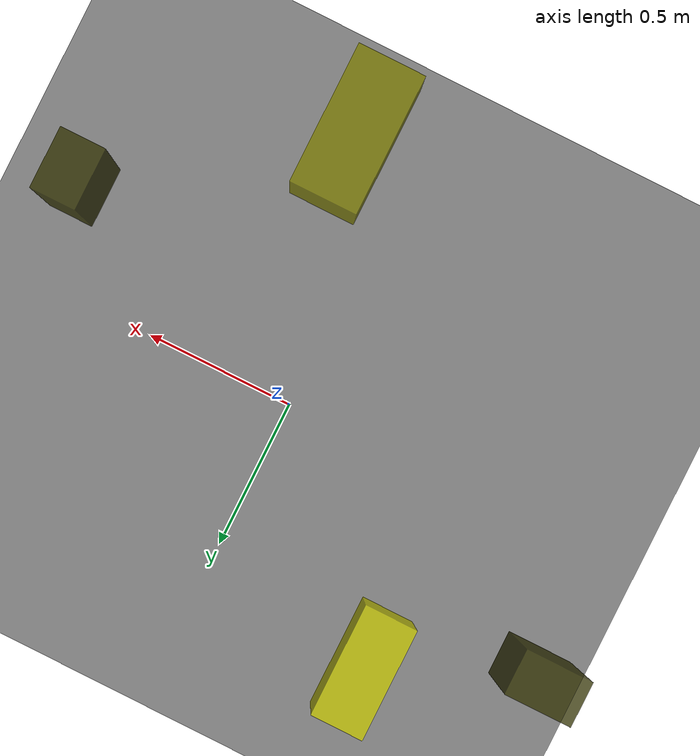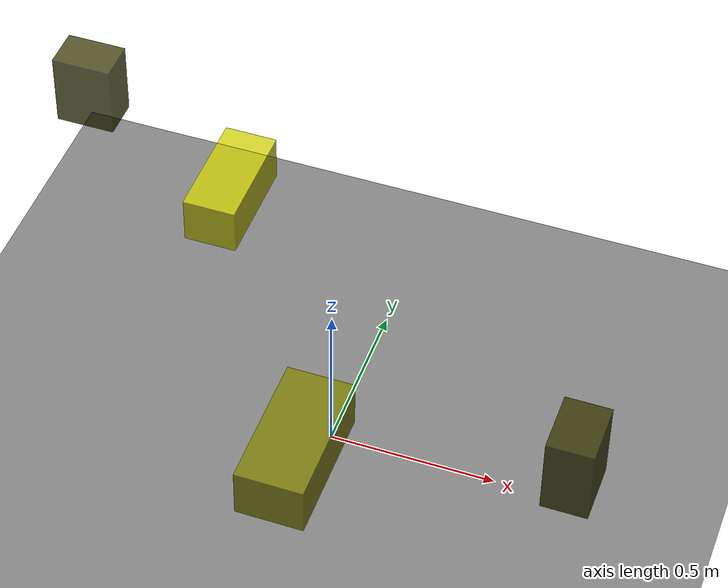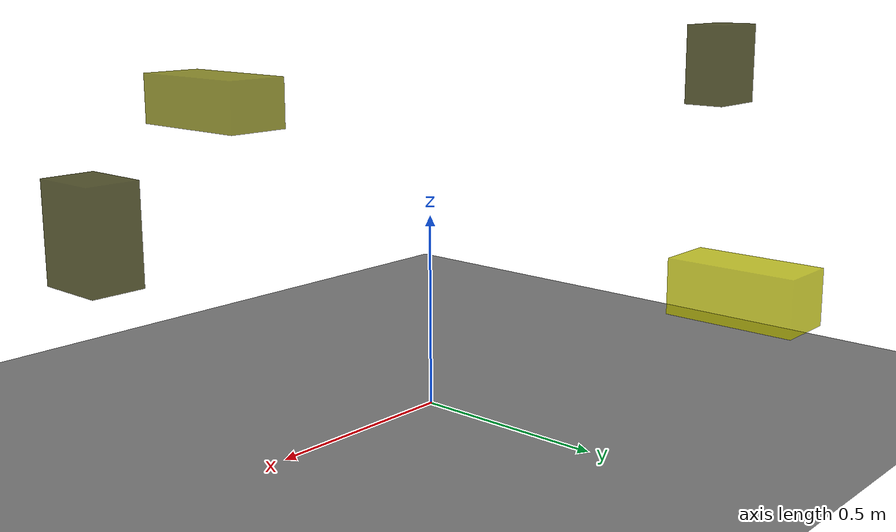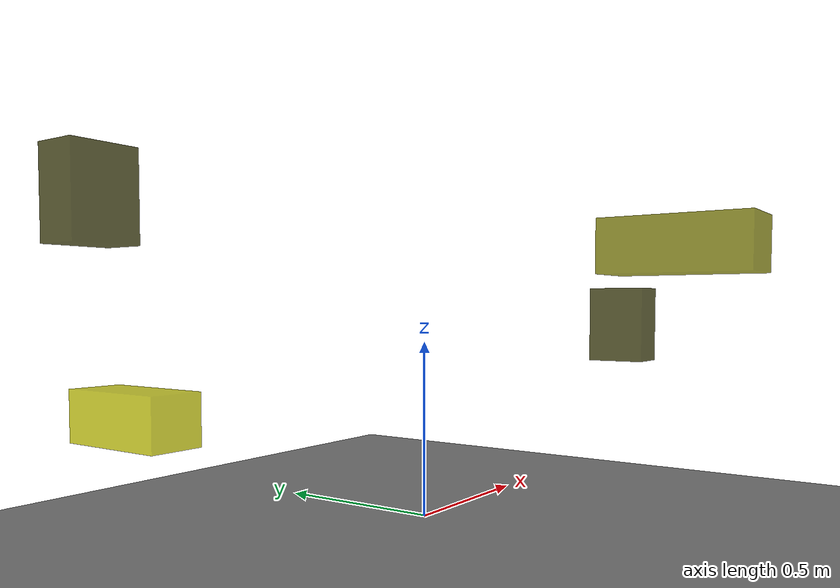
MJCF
<?xml version="1.0"?>
<mujoco model="obstacle_scene">
  <compiler angle="radian" coordinate="local"/>
  <option timestep="0.001" gravity="0 0 -9.81"/>

  <asset>
    <material name="obstacle_mat" rgba="0.8 0.8 0.0 0.8"/>
    <material name="ground_mat" rgba="0.5 0.5 0.5 1"/>
  </asset>

  <worldbody>
    <!-- Ground plane -->
    <geom name="ground" type="plane" size="3 3 0.1" material="ground_mat"/>

    <!-- Obstacles -->
    <body name="obstacle_0" pos="-0.852460 0.327459 0.849563">
      <geom name="obs_0" type="box" size="0.086355 0.058899 0.110394" rgba="0.2 0.2 0.0 0.8"/>
    </body>
    <body name="obstacle_1" pos="0.146008 -0.676885 0.755543">
      <geom name="obs_1" type="box" size="0.092242 0.190820 0.071066" rgba="0.5 0.5 0.0 0.8"/>
    </body>
    <body name="obstacle_2" pos="-0.543864 0.595193 0.296948">
      <geom name="obs_2" type="box" size="0.082658 0.176982 0.075640" rgba="0.8 0.8 0.0 0.8"/>
    </body>
    <body name="obstacle_3" pos="0.787299 -0.286734 0.541436">
      <geom name="obs_3" type="box" size="0.066177 0.089811 0.121841" rgba="0.2 0.2 0.0 0.8"/>
    </body>
  </worldbody>
</mujoco>
